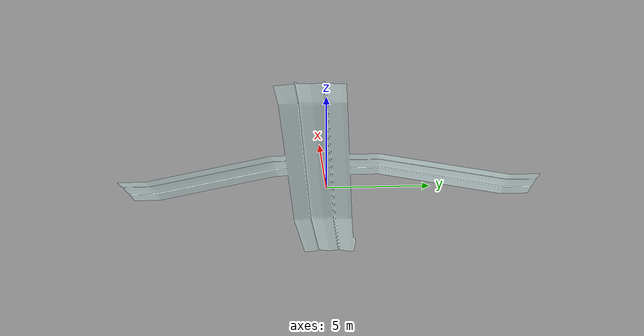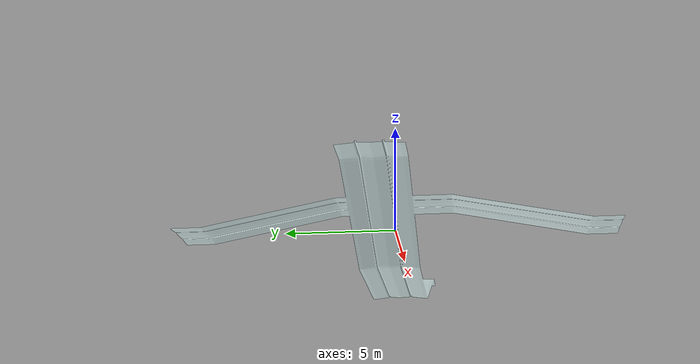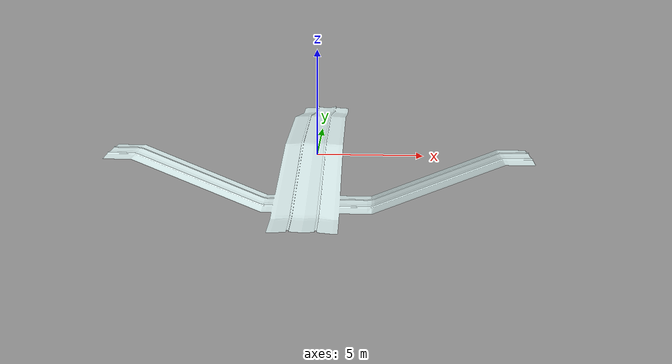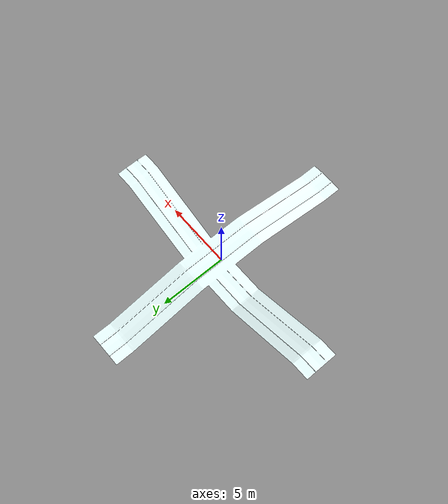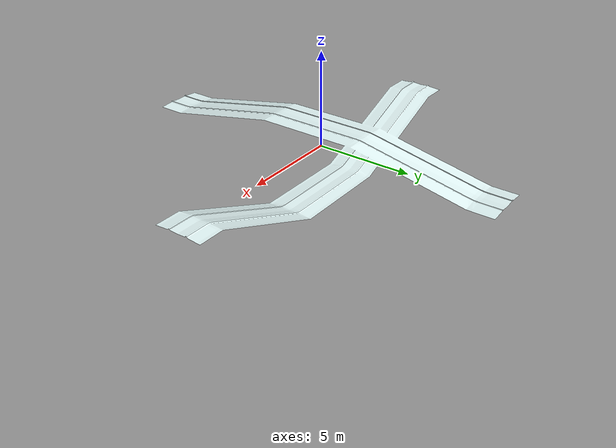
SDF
<?xml version="1.0"?>
<sdf version="1.6">
    <model name="rail_tunnel_straight_overlap">
        <static>true</static>
        <link name="link">
            <collision name="collision">
                <geometry>
                    <mesh>
                        <uri>meshes/rail_tunnel_straight_overlap.dae</uri>
                    </mesh>
                </geometry>
            </collision>
            <visual name="visual">
                <geometry>
                    <mesh>
                        <uri>meshes/rail_tunnel_straight_overlap.dae</uri>
                    </mesh>
                </geometry>
                <material>
                    <diffuse>0.92 1.0 1.0</diffuse>
                    <specular>0.4 0.4 0.4</specular>
                    <pbr>
                        <metal>
                            <albedo_map>https://fuel.ignitionrobotics.org/1.0/openrobotics/models/rail tunnel corner/tip/files/materials/textures/Rails_Albedo.png</albedo_map>
                            <normal_map>https://fuel.ignitionrobotics.org/1.0/openrobotics/models/rail tunnel corner/tip/files/materials/textures/Rails_Normal.png</normal_map>
                            <roughness_map>https://fuel.ignitionrobotics.org/1.0/openrobotics/models/rail tunnel corner/tip/files/materials/textures/Rails_Roughness.png</roughness_map>
                            <metalness>0.2</metalness>
                        </metal>
                    </pbr>
                </material>
            </visual>
        </link>
    </model>
</sdf>
